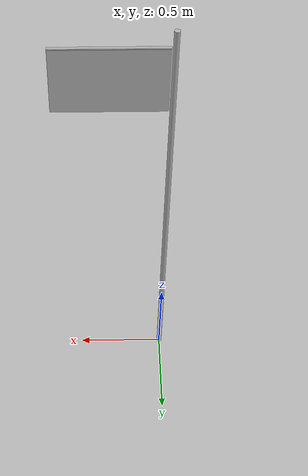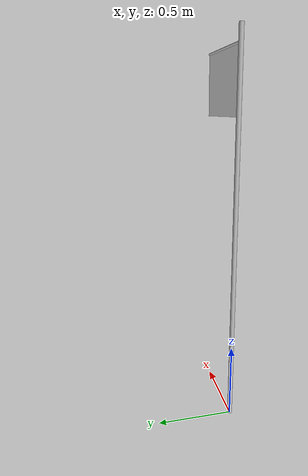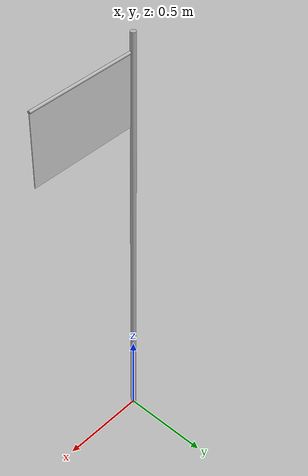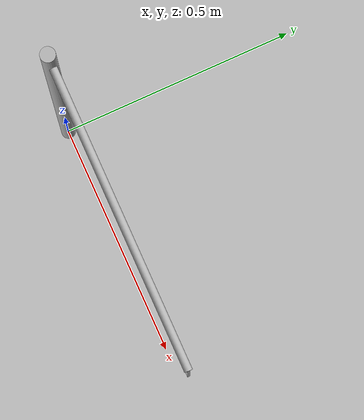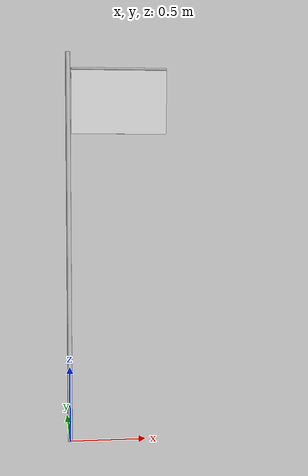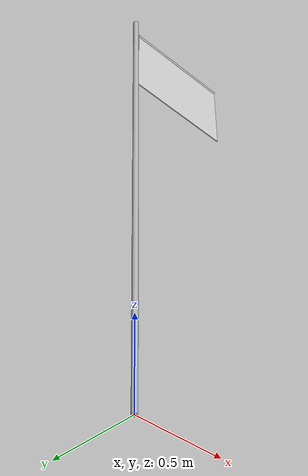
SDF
<?xml version="1.0"?>
<sdf version="1.9">
  <model name="lunar_flag">
    <static>true</static>
    <link name="body">
      <!-- Pole -->
      <visual name="pole_visual">
        <pose>0 0 1.25 0 0 0</pose>
        <geometry>
          <cylinder>
            <radius>0.015</radius>
            <length>2.5</length>
          </cylinder>
        </geometry>
        <material>
          <ambient>0.7 0.7 0.7 1</ambient>
          <diffuse>0.7 0.7 0.7 1</diffuse>
          <specular>0.5 0.5 0.5 1</specular>
        </material>
      </visual>
      <!-- Flag (simplified as thin box) -->
      <visual name="flag_visual">
        <pose>0.32 0 2.2 0 0 0</pose>
        <geometry>
          <box><size>0.6 0.005 0.4</size></box>
        </geometry>
        <material>
          <ambient>0.8 0.8 0.8 1</ambient>
          <diffuse>0.8 0.8 0.8 1</diffuse>
        </material>
      </visual>
      <!-- Horizontal support rod -->
      <visual name="rod_visual">
        <pose>0.32 0 2.4 0 1.5708 0</pose>
        <geometry>
          <cylinder>
            <radius>0.008</radius>
            <length>0.6</length>
          </cylinder>
        </geometry>
        <material>
          <ambient>0.7 0.7 0.7 1</ambient>
          <diffuse>0.7 0.7 0.7 1</diffuse>
          <specular>0.5 0.5 0.5 1</specular>
        </material>
      </visual>
      <collision name="collision">
        <pose>0 0 1.25 0 0 0</pose>
        <geometry>
          <cylinder>
            <radius>0.02</radius>
            <length>2.5</length>
          </cylinder>
        </geometry>
      </collision>
    </link>
  </model>
</sdf>
